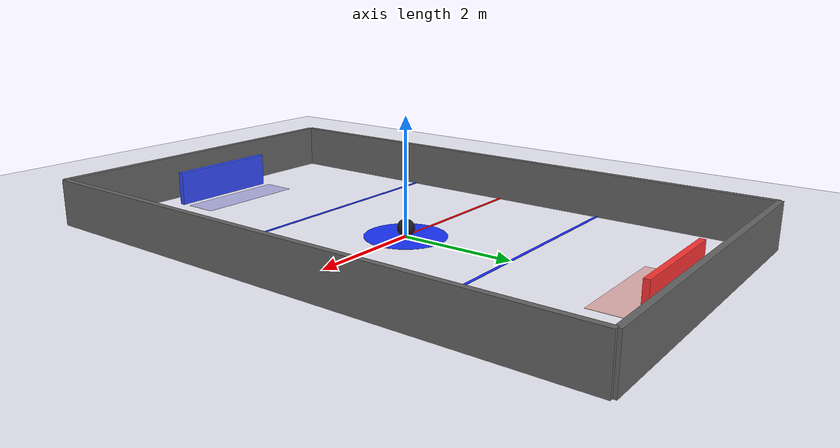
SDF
<?xml version="1.0"?>
<sdf version="1.7">
  <world name="hockey_world">
    <physics name='1ms' type='ignored'>
      <max_step_size>0.001</max_step_size>
      <real_time_factor>1</real_time_factor>
      <real_time_update_rate>1000</real_time_update_rate>
    </physics>
    <plugin name='gz::sim::systems::Physics' filename='gz-sim-physics-system'/>
    <plugin name='gz::sim::systems::UserCommands' filename='gz-sim-user-commands-system'/>
    <plugin name='gz::sim::systems::SceneBroadcaster' filename='gz-sim-scene-broadcaster-system'/>
    <plugin name='gz::sim::systems::Contact' filename='gz-sim-contact-system'/>
    <plugin name='gz::sim::systems::ApplyWrench' filename='gz-sim-apply-wrench-system'/>
    <plugin name='gz::sim::systems::Sensors' filename='gz-sim-sensors-system'>
      <render_engine>ogre2</render_engine>
    </plugin>
    <plugin name='gz::sim::systems::NavSat' filename='gz-sim-navsat-system' />

    <gravity>0 0 -9.8000000000000007</gravity>
    <magnetic_field>5.5644999999999998e-06 2.2875799999999999e-05 -4.2388400000000002e-05</magnetic_field>
    <atmosphere type='adiabatic'/>

    <!-- LIGHTING -->
    <ambient>0.6 0.6 0.6 1</ambient>
    <background>0.9 0.9 0.9 1</background>

    <light name="sun" type="directional">
      <pose>0 0 10 0 0 0</pose>
      <diffuse>1 1 1 1</diffuse>
      <specular>0.1 0.1 0.1 1</specular>
      <direction>-0.2 0.3 -1</direction>
      <cast_shadows>true</cast_shadows>
    </light>

    <!-- FLOOR (ICE) -->
    <model name="floor">
      <static>true</static>
      <link name="floor_link">
        <visual name="visual">
          <geometry>
            <plane>
              <normal>0 0 1</normal>
              <size>20 20</size>
            </plane>
          </geometry>
          <material>
            <!-- ice colour -->
            <ambient>0.95 0.95 1.0 1</ambient>
            <diffuse>0.95 0.95 1.0 1</diffuse>
          </material>
        </visual>
        <collision name="collision">
          <geometry>
            <plane>
              <normal>0 0 1</normal>
              <size>20 20</size>
            </plane>
          </geometry>
        </collision>
      </link>
    </model>

    <!-- RINK LINES (thin boxes on the floor) -->

    <!-- Centre red line -->
    <model name="centre_line">
      <static>true</static>
      <pose>0 0 0.01 0 0 0</pose>
      <link name="link">
        <visual name="visual">
          <geometry>
            <box>
              <size>6 0.05 0.01</size>
            </box>
          </geometry>
          <material>
            <ambient>1 0 0 1</ambient>
            <diffuse>1 0 0 1</diffuse>
          </material>
        </visual>
      </link>
    </model>

    <!-- Blue line north -->
    <model name="blue_line_north">
      <static>true</static>
      <pose>0 2.0 0.01 0 0 0</pose>
      <link name="link">
        <visual name="visual">
          <geometry>
            <box>
              <size>6 0.05 0.01</size>
            </box>
          </geometry>
          <material>
            <ambient>0.1 0.2 1 1</ambient>
            <diffuse>0.1 0.2 1 1</diffuse>
          </material>
        </visual>
      </link>
    </model>

    <!-- Blue line south -->
    <model name="blue_line_south">
      <static>true</static>
      <pose>0 -2.0 0.01 0 0 0</pose>
      <link name="link">
        <visual name="visual">
          <geometry>
            <box>
              <size>6 0.05 0.01</size>
            </box>
          </geometry>
          <material>
            <ambient>0.1 0.2 1 1</ambient>
            <diffuse>0.1 0.2 1 1</diffuse>
          </material>
        </visual>
      </link>
    </model>

    <!-- Centre faceoff circle -->
    <model name="centre_circle">
      <static>true</static>
      <pose>0 0 0.011 0 0 0</pose>
      <link name="link">
        <visual name="visual">
          <geometry>
            <cylinder>
              <radius>0.7</radius>
              <length>0.005</length>
            </cylinder>
          </geometry>
          <material>
            <ambient>0.1 0.2 1 1</ambient>
            <diffuse>0.1 0.2 1 1</diffuse>
          </material>
        </visual>
      </link>
    </model>

    <!-- Goal crease north (red team) -->
    <model name="crease_north">
      <static>true</static>
      <pose>0 4.0 0.011 0 0 0</pose>
      <link name="link">
        <visual name="visual">
          <geometry>
            <box>
              <size>2 0.6 0.005</size>
            </box>
          </geometry>
          <material>
            <ambient>0.9 0.7 0.7 1</ambient>
            <diffuse>0.9 0.7 0.7 1</diffuse>
          </material>
        </visual>
      </link>
    </model>

    <!-- Goal crease south (blue team) -->
    <model name="crease_south">
      <static>true</static>
      <pose>0 -4.0 0.011 0 0 0</pose>
      <link name="link">
        <visual name="visual">
          <geometry>
            <box>
              <size>2 0.6 0.005</size>
            </box>
          </geometry>
          <material>
            <ambient>0.7 0.7 0.9 1</ambient>
            <diffuse>0.7 0.7 0.9 1</diffuse>
          </material>
        </visual>
      </link>
    </model>

    <!-- WALLS -->
    <model name="wall_north">
      <static>true</static>
      <pose>0 5 0.4 0 0 0</pose>
      <link name="link">
        <visual name="visual">
          <geometry><box><size>6 0.1 0.8</size></box></geometry>
          <material>
            <ambient>0.4 0.4 0.4 1</ambient>
            <diffuse>0.4 0.4 0.4 1</diffuse>
          </material>
        </visual>
        <collision name="collision">
          <geometry><box><size>6 0.1 0.8</size></box></geometry>
        </collision>
      </link>
    </model>

    <model name="wall_south">
      <static>true</static>
      <pose>0 -5 0.4 0 0 0</pose>
      <link name="link">
        <visual name="visual">
          <geometry><box><size>6 0.1 0.8</size></box></geometry>
          <material>
            <ambient>0.4 0.4 0.4 1</ambient>
            <diffuse>0.4 0.4 0.4 1</diffuse>
          </material>
        </visual>
        <collision name="collision">
          <geometry><box><size>6 0.1 0.8</size></box></geometry>
        </collision>
      </link>
    </model>

    <model name="wall_east">
      <static>true</static>
      <pose>3 0 0.4 0 0 0</pose>
      <link name="link">
        <visual name="visual">
          <geometry><box><size>0.1 10 0.8</size></box></geometry>
          <material>
            <ambient>0.4 0.4 0.4 1</ambient>
            <diffuse>0.4 0.4 0.4 1</diffuse>
          </material>
        </visual>
        <collision name="collision">
          <geometry><box><size>0.1 10 0.8</size></box></geometry>
        </collision>
      </link>
    </model>

    <model name="wall_west">
      <static>true</static>
      <pose>-3 0 0.4 0 0 0</pose>
      <link name="link">
        <visual name="visual">
          <geometry><box><size>0.1 10 0.8</size></box></geometry>
          <material>
            <ambient>0.4 0.4 0.4 1</ambient>
            <diffuse>0.4 0.4 0.4 1</diffuse>
          </material>
        </visual>
        <collision name="collision">
          <geometry><box><size>0.1 10 0.8</size></box></geometry>
        </collision>
      </link>
    </model>

    <!-- GOALS -->
    <model name="goal_north">
      <static>true</static>
      <pose>0 4.5 0.3 0 0 0</pose>
      <link name="goal_link">
        <visual name="visual">
          <geometry><box><size>2 0.1 0.6</size></box></geometry>
          <material>
            <ambient>1 0.2 0.2 1</ambient>
            <diffuse>1 0.2 0.2 1</diffuse>
          </material>
        </visual>
      </link>
    </model>

    <model name="goal_south">
      <static>true</static>
      <pose>0 -4.5 0.3 0 0 0</pose>
      <link name="goal_link">
        <visual name="visual">
          <geometry><box><size>2 0.1 0.6</size></box></geometry>
          <material>
            <ambient>0.2 0.3 1 1</ambient>
            <diffuse>0.2 0.3 1 1</diffuse>
          </material>
        </visual>
      </link>
    </model>

    <!-- PUCK -->
    <model name="puck">
      <static>false</static>
      <pose>0 0 0.15 0 0 0</pose>
      <link name="puck_link">

        <visual name="visual">
          <geometry>
            <sphere>
              <radius>0.15</radius>
            </sphere>
          </geometry>

          <material>
            <ambient>0.1 0.1 0.1 1</ambient>
            <diffuse>0.1 0.1 0.1 1</diffuse>
          </material>
        </visual>

        <collision name="collision">
          <geometry>
            <sphere>
              <radius>0.15</radius>
            </sphere>
          </geometry>

          <surface>
            <friction>
              <ode>
                <mu>0.001</mu>
                <mu2>0.001</mu2>
              </ode>
            </friction>
            <bounce>
              <restitution_coefficient>0.5</restitution_coefficient>
              <threshold>0.0</threshold>
            </bounce>
          </surface>
        </collision>

        <inertial>
          <mass>0.2</mass>
          <inertia>
            <ixx>0.0018</ixx>
            <iyy>0.0018</iyy>
            <izz>0.0018</izz>
          </inertia>
        </inertial>
      </link>
    </model>
  </world>
</sdf>
